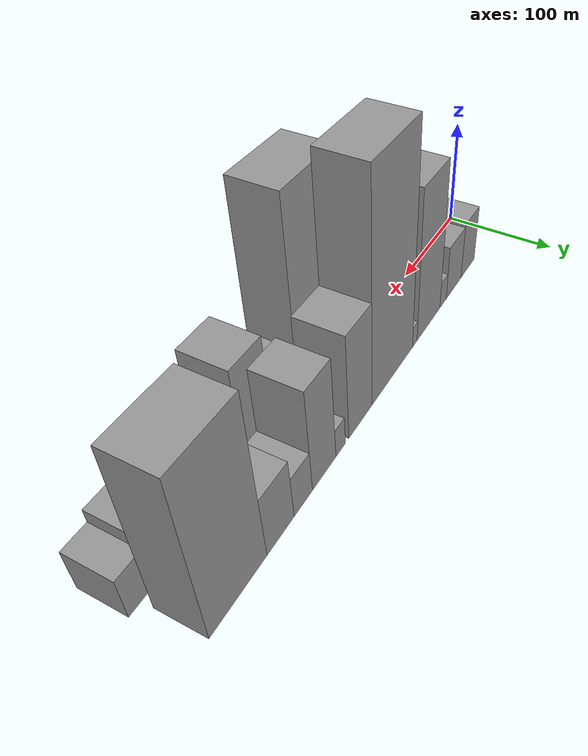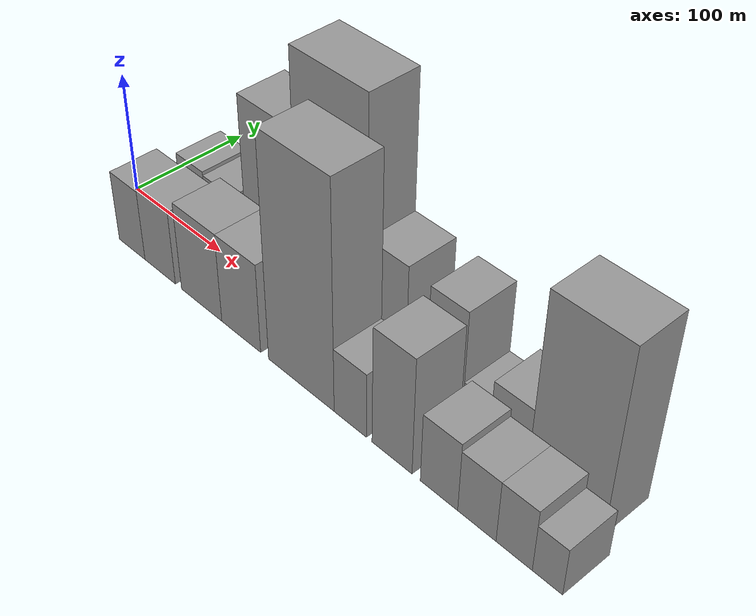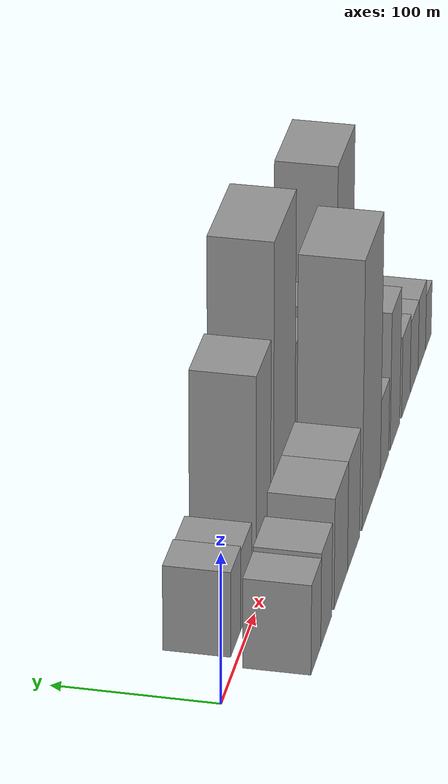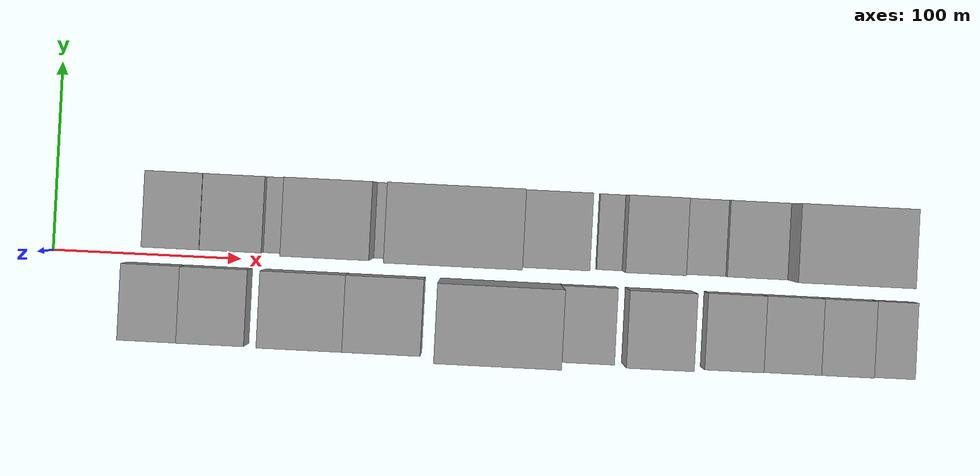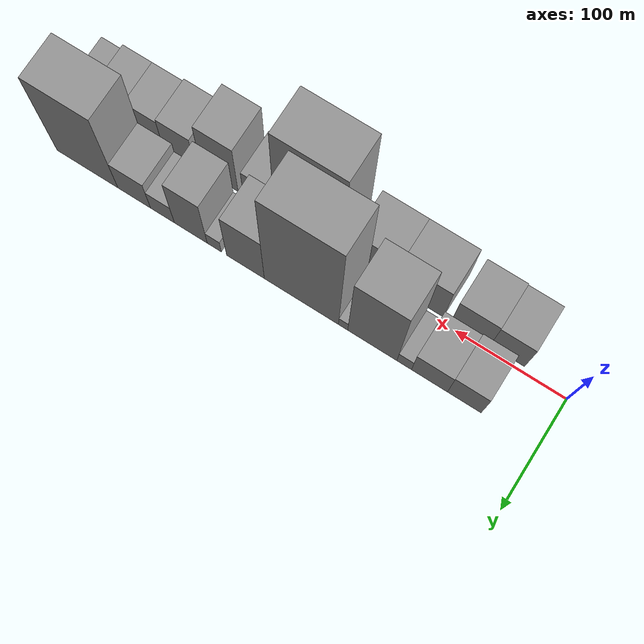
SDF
<sdf version="1.6">
 <world name="default">
  <scene>
   <sky><clouds><speed>12</speed></clouds></sky>
   <ambient>0.4 0.4 0.4 1</ambient>
   <background>0.7 0.7 0.7 1</background>
   <shadows>1</shadows>
  </scene>
  <gravity>0 0 -9.8066</gravity>
  <magnetic_field>6e-06 2.3e-05 -4.2e-05</magnetic_field>
  <physics default="0" name="default_physics" type="ode">
   <ode>
    <solver>
     <type>quick</type>
     <iters>10</iters>
     <sor>1.0</sor>
     <use_dynamic_moi_rescaling>0</use_dynamic_moi_rescaling>
    </solver>
    <constraints>
     <cfm>0</cfm>
     <erp>0.2</erp>
     <contact_max_correcting_vel>100</contact_max_correcting_vel>
     <contact_surface_layer>0.001</contact_surface_layer>
    </constraints>
   </ode>
   <max_step_size>0.004</max_step_size>
   <real_time_factor>1</real_time_factor>
   <real_time_update_rate>250</real_time_update_rate>
  </physics>
  <light name="sun" type="directional">
   <pose>0 0 10 0 0 0</pose>
   <diffuse>0.8 0.8 0.8 1</diffuse>
   <specular>0.2 0.2 0.2 1</specular>
   <attenuation>
    <range>1000</range>
    <constant>0.9</constant>
    <linear>0.01</linear>
    <quadratic>0.001</quadratic>
   </attenuation>
   <direction>-0.5 0.1 -0.9</direction>
  </light>
  <model name="building_1">
   <static>1</static>
   <pose>65.0973 24.5000 0 0.000000 0.000000 1.570796</pose>
   <link name="link">
    <pose>0 0 28.50 0 0 0</pose>
    <collision name="collision"><geometry><box><size>40.0000 30.1947 57.0000</size></box></geometry></collision>
    <visual name="visual">
     <cast_shadows>0</cast_shadows>
     <geometry><box><size>40.0000 30.1947 57.0000</size></box></geometry>
     <material>
      <script>
       <uri>model://grey_wall/materials/scripts</uri>
       <uri>model://grey_wall/materials/textures</uri>
       <name>vrc/grey_wall</name>
      </script>
     </material>
    </visual>
   </link>
  </model>
  <model name="building_2">
   <static>1</static>
   <pose>96.3905 24.5000 0 0.000000 0.000000 1.570796</pose>
   <link name="link">
    <pose>0 0 27.00 0 0 0</pose>
    <collision name="collision"><geometry><box><size>40.0000 32.3916 54.0000</size></box></geometry></collision>
    <visual name="visual">
     <cast_shadows>0</cast_shadows>
     <geometry><box><size>40.0000 32.3916 54.0000</size></box></geometry>
     <material>
      <script>
       <uri>model://grey_wall/materials/scripts</uri>
       <uri>model://grey_wall/materials/textures</uri>
       <name>vrc/grey_wall</name>
      </script>
     </material>
    </visual>
   </link>
  </model>
  <model name="building_3">
   <static>1</static>
   <pose>119.2140 24.5000 0 0.000000 0.000000 1.570796</pose>
   <link name="link">
    <pose>0 0 13.50 0 0 0</pose>
    <collision name="collision"><geometry><box><size>40.0000 13.2555 27.0000</size></box></geometry></collision>
    <visual name="visual">
     <cast_shadows>0</cast_shadows>
     <geometry><box><size>40.0000 13.2555 27.0000</size></box></geometry>
     <material>
      <script>
       <uri>model://grey_wall/materials/scripts</uri>
       <uri>model://grey_wall/materials/textures</uri>
       <name>vrc/grey_wall</name>
      </script>
     </material>
    </visual>
   </link>
  </model>
  <model name="building_4">
   <static>1</static>
   <pose>148.2924 24.5000 0 0.000000 0.000000 1.570796</pose>
   <link name="link">
    <pose>0 0 72.00 0 0 0</pose>
    <collision name="collision"><geometry><box><size>40.0000 44.9013 144.0000</size></box></geometry></collision>
    <visual name="visual">
     <cast_shadows>0</cast_shadows>
     <geometry><box><size>40.0000 44.9013 144.0000</size></box></geometry>
     <material>
      <script>
       <uri>model://grey_wall/materials/scripts</uri>
       <uri>model://grey_wall/materials/textures</uri>
       <name>vrc/grey_wall</name>
      </script>
     </material>
    </visual>
   </link>
  </model>
  <model name="building_5">
   <static>1</static>
   <pose>175.0160 24.5000 0 0.000000 0.000000 1.570796</pose>
   <link name="link">
    <pose>0 0 10.50 0 0 0</pose>
    <collision name="collision"><geometry><box><size>40.0000 8.5459 21.0000</size></box></geometry></collision>
    <visual name="visual">
     <cast_shadows>0</cast_shadows>
     <geometry><box><size>40.0000 8.5459 21.0000</size></box></geometry>
     <material>
      <script>
       <uri>model://grey_wall/materials/scripts</uri>
       <uri>model://grey_wall/materials/textures</uri>
       <name>vrc/grey_wall</name>
      </script>
     </material>
    </visual>
   </link>
  </model>
  <model name="building_6">
   <static>1</static>
   <pose>213.6479 24.5000 0 0.000000 0.000000 1.570796</pose>
   <link name="link">
    <pose>0 0 102.00 0 0 0</pose>
    <collision name="collision"><geometry><box><size>40.0000 68.7178 204.0000</size></box></geometry></collision>
    <visual name="visual">
     <cast_shadows>0</cast_shadows>
     <geometry><box><size>40.0000 68.7178 204.0000</size></box></geometry>
     <material>
      <script>
       <uri>model://grey_wall/materials/scripts</uri>
       <uri>model://grey_wall/materials/textures</uri>
       <name>vrc/grey_wall</name>
      </script>
     </material>
    </visual>
   </link>
  </model>
  <model name="building_7">
   <static>1</static>
   <pose>265.7248 24.5000 0 0.000000 0.000000 1.570796</pose>
   <link name="link">
    <pose>0 0 49.50 0 0 0</pose>
    <collision name="collision"><geometry><box><size>40.0000 35.4359 99.0000</size></box></geometry></collision>
    <visual name="visual">
     <cast_shadows>0</cast_shadows>
     <geometry><box><size>40.0000 35.4359 99.0000</size></box></geometry>
     <material>
      <script>
       <uri>model://grey_wall/materials/scripts</uri>
       <uri>model://grey_wall/materials/textures</uri>
       <name>vrc/grey_wall</name>
      </script>
     </material>
    </visual>
   </link>
  </model>
  <model name="building_8">
   <static>1</static>
   <pose>295.1409 24.5000 0 0.000000 0.000000 1.570796</pose>
   <link name="link">
    <pose>0 0 13.50 0 0 0</pose>
    <collision name="collision"><geometry><box><size>40.0000 13.3963 27.0000</size></box></geometry></collision>
    <visual name="visual">
     <cast_shadows>0</cast_shadows>
     <geometry><box><size>40.0000 13.3963 27.0000</size></box></geometry>
     <material>
      <script>
       <uri>model://grey_wall/materials/scripts</uri>
       <uri>model://grey_wall/materials/textures</uri>
       <name>vrc/grey_wall</name>
      </script>
     </material>
    </visual>
   </link>
  </model>
  <model name="building_9">
   <static>1</static>
   <pose>317.4886 24.5000 0 0.000000 0.000000 1.570796</pose>
   <link name="link">
    <pose>0 0 48.00 0 0 0</pose>
    <collision name="collision"><geometry><box><size>40.0000 31.2992 96.0000</size></box></geometry></collision>
    <visual name="visual">
     <cast_shadows>0</cast_shadows>
     <geometry><box><size>40.0000 31.2992 96.0000</size></box></geometry>
     <material>
      <script>
       <uri>model://grey_wall/materials/scripts</uri>
       <uri>model://grey_wall/materials/textures</uri>
       <name>vrc/grey_wall</name>
      </script>
     </material>
    </visual>
   </link>
  </model>
  <model name="building_10">
   <static>1</static>
   <pose>344.5694 24.5000 0 0.000000 0.000000 1.570796</pose>
   <link name="link">
    <pose>0 0 19.50 0 0 0</pose>
    <collision name="collision"><geometry><box><size>40.0000 22.8624 39.0000</size></box></geometry></collision>
    <visual name="visual">
     <cast_shadows>0</cast_shadows>
     <geometry><box><size>40.0000 22.8624 39.0000</size></box></geometry>
     <material>
      <script>
       <uri>model://grey_wall/materials/scripts</uri>
       <uri>model://grey_wall/materials/textures</uri>
       <name>vrc/grey_wall</name>
      </script>
     </material>
    </visual>
   </link>
  </model>
  <model name="building_11">
   <static>1</static>
   <pose>371.7486 24.5000 0 0.000000 0.000000 1.570796</pose>
   <link name="link">
    <pose>0 0 28.50 0 0 0</pose>
    <collision name="collision"><geometry><box><size>40.0000 31.4959 57.0000</size></box></geometry></collision>
    <visual name="visual">
     <cast_shadows>0</cast_shadows>
     <geometry><box><size>40.0000 31.4959 57.0000</size></box></geometry>
     <material>
      <script>
       <uri>model://grey_wall/materials/scripts</uri>
       <uri>model://grey_wall/materials/textures</uri>
       <name>vrc/grey_wall</name>
      </script>
     </material>
    </visual>
   </link>
  </model>
  <model name="building_12">
   <static>1</static>
   <pose>417.1908 24.5000 0 0.000000 0.000000 1.570796</pose>
   <link name="link">
    <pose>0 0 75.00 0 0 0</pose>
    <collision name="collision"><geometry><box><size>40.0000 59.3887 150.0000</size></box></geometry></collision>
    <visual name="visual">
     <cast_shadows>0</cast_shadows>
     <geometry><box><size>40.0000 59.3887 150.0000</size></box></geometry>
     <material>
      <script>
       <uri>model://grey_wall/materials/scripts</uri>
       <uri>model://grey_wall/materials/textures</uri>
       <name>vrc/grey_wall</name>
      </script>
     </material>
    </visual>
   </link>
  </model>
  <model name="building_13">
   <static>1</static>
   <pose>55.4658 -24.5000 0 0.000000 0.000000 1.570796</pose>
   <link name="link">
    <pose>0 0 30.00 0 0 0</pose>
    <collision name="collision"><geometry><box><size>40.0000 30.9317 60.0000</size></box></geometry></collision>
    <visual name="visual">
     <cast_shadows>0</cast_shadows>
     <geometry><box><size>40.0000 30.9317 60.0000</size></box></geometry>
     <material>
      <script>
       <uri>model://grey_wall/materials/scripts</uri>
       <uri>model://grey_wall/materials/textures</uri>
       <name>vrc/grey_wall</name>
      </script>
     </material>
    </visual>
   </link>
  </model>
  <model name="building_14">
   <static>1</static>
   <pose>88.6021 -24.5000 0 0.000000 0.000000 1.570796</pose>
   <link name="link">
    <pose>0 0 31.50 0 0 0</pose>
    <collision name="collision"><geometry><box><size>40.0000 35.3409 63.0000</size></box></geometry></collision>
    <visual name="visual">
     <cast_shadows>0</cast_shadows>
     <geometry><box><size>40.0000 35.3409 63.0000</size></box></geometry>
     <material>
      <script>
       <uri>model://grey_wall/materials/scripts</uri>
       <uri>model://grey_wall/materials/textures</uri>
       <name>vrc/grey_wall</name>
      </script>
     </material>
    </visual>
   </link>
  </model>
  <model name="building_15">
   <static>1</static>
   <pose>135.4819 -24.5000 0 0.000000 0.000000 1.570796</pose>
   <link name="link">
    <pose>0 0 37.50 0 0 0</pose>
    <collision name="collision"><geometry><box><size>40.0000 44.4186 75.0000</size></box></geometry></collision>
    <visual name="visual">
     <cast_shadows>0</cast_shadows>
     <geometry><box><size>40.0000 44.4186 75.0000</size></box></geometry>
     <material>
      <script>
       <uri>model://grey_wall/materials/scripts</uri>
       <uri>model://grey_wall/materials/textures</uri>
       <name>vrc/grey_wall</name>
      </script>
     </material>
    </visual>
   </link>
  </model>
  <model name="building_16">
   <static>1</static>
   <pose>178.0255 -24.5000 0 0.000000 0.000000 1.570796</pose>
   <link name="link">
    <pose>0 0 37.50 0 0 0</pose>
    <collision name="collision"><geometry><box><size>40.0000 40.6685 75.0000</size></box></geometry></collision>
    <visual name="visual">
     <cast_shadows>0</cast_shadows>
     <geometry><box><size>40.0000 40.6685 75.0000</size></box></geometry>
     <material>
      <script>
       <uri>model://grey_wall/materials/scripts</uri>
       <uri>model://grey_wall/materials/textures</uri>
       <name>vrc/grey_wall</name>
      </script>
     </material>
    </visual>
   </link>
  </model>
  <model name="building_17">
   <static>1</static>
   <pose>238.2441 -24.5000 0 0.000000 0.000000 1.570796</pose>
   <link name="link">
    <pose>0 0 91.50 0 0 0</pose>
    <collision name="collision"><geometry><box><size>40.0000 63.7687 183.0000</size></box></geometry></collision>
    <visual name="visual">
     <cast_shadows>0</cast_shadows>
     <geometry><box><size>40.0000 63.7687 183.0000</size></box></geometry>
     <material>
      <script>
       <uri>model://grey_wall/materials/scripts</uri>
       <uri>model://grey_wall/materials/textures</uri>
       <name>vrc/grey_wall</name>
      </script>
     </material>
    </visual>
   </link>
  </model>
  <model name="building_18">
   <static>1</static>
   <pose>284.9114 -24.5000 0 0.000000 0.000000 1.570796</pose>
   <link name="link">
    <pose>0 0 27.00 0 0 0</pose>
    <collision name="collision"><geometry><box><size>40.0000 29.5658 54.0000</size></box></geometry></collision>
    <visual name="visual">
     <cast_shadows>0</cast_shadows>
     <geometry><box><size>40.0000 29.5658 54.0000</size></box></geometry>
     <material>
      <script>
       <uri>model://grey_wall/materials/scripts</uri>
       <uri>model://grey_wall/materials/textures</uri>
       <name>vrc/grey_wall</name>
      </script>
     </material>
    </visual>
   </link>
  </model>
  <model name="building_19">
   <static>1</static>
   <pose>322.1823 -24.5000 0 0.000000 0.000000 1.570796</pose>
   <link name="link">
    <pose>0 0 48.00 0 0 0</pose>
    <collision name="collision"><geometry><box><size>40.0000 34.9760 96.0000</size></box></geometry></collision>
    <visual name="visual">
     <cast_shadows>0</cast_shadows>
     <geometry><box><size>40.0000 34.9760 96.0000</size></box></geometry>
     <material>
      <script>
       <uri>model://grey_wall/materials/scripts</uri>
       <uri>model://grey_wall/materials/textures</uri>
       <name>vrc/grey_wall</name>
      </script>
     </material>
    </visual>
   </link>
  </model>
  <model name="building_20">
   <static>1</static>
   <pose>362.1376 -24.5000 0 0.000000 0.000000 1.570796</pose>
   <link name="link">
    <pose>0 0 28.50 0 0 0</pose>
    <collision name="collision"><geometry><box><size>40.0000 30.9346 57.0000</size></box></geometry></collision>
    <visual name="visual">
     <cast_shadows>0</cast_shadows>
     <geometry><box><size>40.0000 30.9346 57.0000</size></box></geometry>
     <material>
      <script>
       <uri>model://grey_wall/materials/scripts</uri>
       <uri>model://grey_wall/materials/textures</uri>
       <name>vrc/grey_wall</name>
      </script>
     </material>
    </visual>
   </link>
  </model>
  <model name="building_21">
   <static>1</static>
   <pose>392.8339 -24.5000 0 0.000000 0.000000 1.570796</pose>
   <link name="link">
    <pose>0 0 25.50 0 0 0</pose>
    <collision name="collision"><geometry><box><size>40.0000 30.4580 51.0000</size></box></geometry></collision>
    <visual name="visual">
     <cast_shadows>0</cast_shadows>
     <geometry><box><size>40.0000 30.4580 51.0000</size></box></geometry>
     <material>
      <script>
       <uri>model://grey_wall/materials/scripts</uri>
       <uri>model://grey_wall/materials/textures</uri>
       <name>vrc/grey_wall</name>
      </script>
     </material>
    </visual>
   </link>
  </model>
  <model name="building_22">
   <static>1</static>
   <pose>421.8794 -24.5000 0 0.000000 0.000000 1.570796</pose>
   <link name="link">
    <pose>0 0 25.50 0 0 0</pose>
    <collision name="collision"><geometry><box><size>40.0000 27.6329 51.0000</size></box></geometry></collision>
    <visual name="visual">
     <cast_shadows>0</cast_shadows>
     <geometry><box><size>40.0000 27.6329 51.0000</size></box></geometry>
     <material>
      <script>
       <uri>model://grey_wall/materials/scripts</uri>
       <uri>model://grey_wall/materials/textures</uri>
       <name>vrc/grey_wall</name>
      </script>
     </material>
    </visual>
   </link>
  </model>
  <model name="building_23">
   <static>1</static>
   <pose>446.8649 -24.5000 0 0.000000 0.000000 1.570796</pose>
   <link name="link">
    <pose>0 0 19.50 0 0 0</pose>
    <collision name="collision"><geometry><box><size>40.0000 22.3381 39.0000</size></box></geometry></collision>
    <visual name="visual">
     <cast_shadows>0</cast_shadows>
     <geometry><box><size>40.0000 22.3381 39.0000</size></box></geometry>
     <material>
      <script>
       <uri>model://grey_wall/materials/scripts</uri>
       <uri>model://grey_wall/materials/textures</uri>
       <name>vrc/grey_wall</name>
      </script>
     </material>
    </visual>
   </link>
  </model>
 </world>
</sdf>
